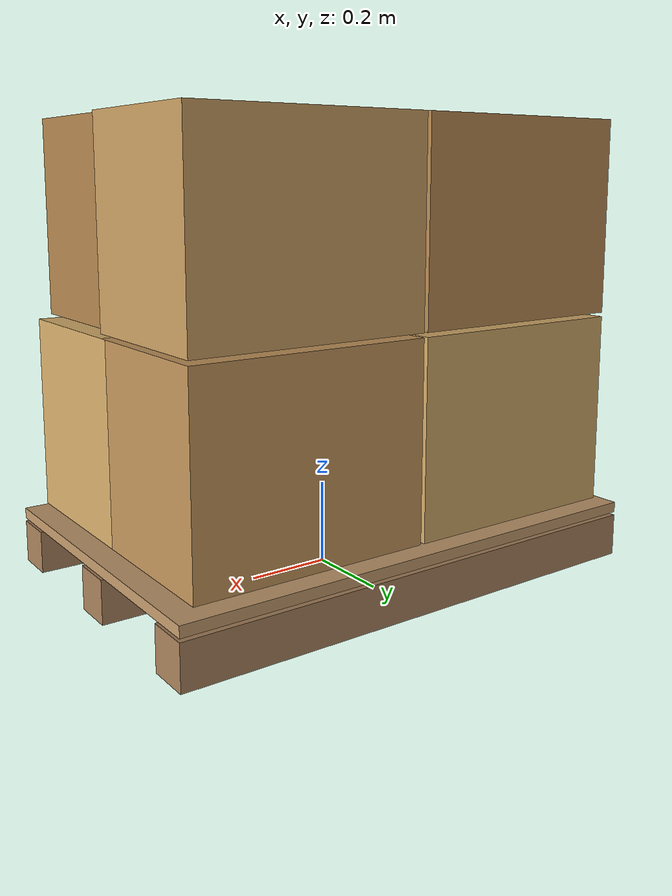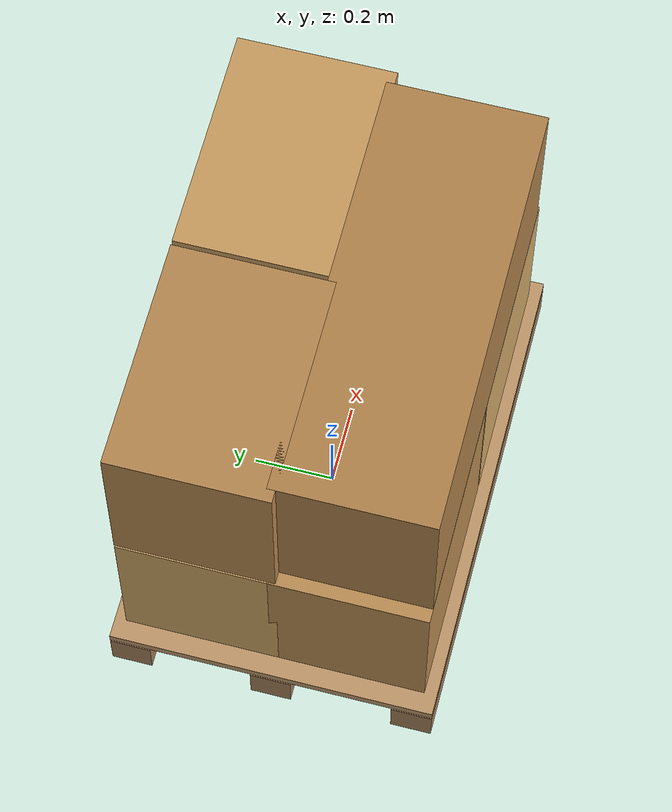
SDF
<?xml version="1.0" ?>
<sdf version="1.6">
  <model name="pallet_stack">
    <!-- Static scenery stock: looks real, cheap for physics -->
    <static>true</static>
    <link name="link">

      <!-- Euro pallet deck -->
      <visual name="deck_vis">
        <pose>0 0 0.13 0 0 0</pose>
        <geometry><box><size>1.20 0.80 0.025</size></box></geometry>
        <material><ambient>0.76 0.60 0.42 1</ambient><diffuse>0.76 0.60 0.42 1</diffuse></material>
      </visual>
      <collision name="deck_col">
        <pose>0 0 0.13 0 0 0</pose>
        <geometry><box><size>1.20 0.80 0.025</size></box></geometry>
      </collision>

      <visual name="runner_l_vis">
        <pose>0 0.35 0.06 0 0 0</pose>
        <geometry><box><size>1.20 0.10 0.10</size></box></geometry>
        <material><ambient>0.65 0.50 0.35 1</ambient><diffuse>0.65 0.50 0.35 1</diffuse></material>
      </visual>
      <collision name="runner_l_col">
        <pose>0 0.35 0.06 0 0 0</pose>
        <geometry><box><size>1.20 0.10 0.10</size></box></geometry>
      </collision>
      <visual name="runner_m_vis">
        <pose>0 0 0.06 0 0 0</pose>
        <geometry><box><size>1.20 0.10 0.10</size></box></geometry>
        <material><ambient>0.65 0.50 0.35 1</ambient><diffuse>0.65 0.50 0.35 1</diffuse></material>
      </visual>
      <collision name="runner_m_col">
        <pose>0 0 0.06 0 0 0</pose>
        <geometry><box><size>1.20 0.10 0.10</size></box></geometry>
      </collision>
      <visual name="runner_r_vis">
        <pose>0 -0.35 0.06 0 0 0</pose>
        <geometry><box><size>1.20 0.10 0.10</size></box></geometry>
        <material><ambient>0.65 0.50 0.35 1</ambient><diffuse>0.65 0.50 0.35 1</diffuse></material>
      </visual>
      <collision name="runner_r_col">
        <pose>0 -0.35 0.06 0 0 0</pose>
        <geometry><box><size>1.20 0.10 0.10</size></box></geometry>
      </collision>

      <!-- Layer 1 cartons -->
      <visual name="box_a_vis">
        <pose>-0.28 0.18 0.38 0 0 0</pose>
        <geometry><box><size>0.55 0.38 0.45</size></box></geometry>
        <material><ambient>0.78 0.62 0.38 1</ambient><diffuse>0.82 0.66 0.40 1</diffuse></material>
      </visual>
      <collision name="box_a_col">
        <pose>-0.28 0.18 0.38 0 0 0</pose>
        <geometry><box><size>0.55 0.38 0.45</size></box></geometry>
      </collision>
      <visual name="box_b_vis">
        <pose>0.28 0.18 0.38 0 0 0</pose>
        <geometry><box><size>0.55 0.38 0.45</size></box></geometry>
        <material><ambient>0.72 0.55 0.32 1</ambient><diffuse>0.76 0.58 0.35 1</diffuse></material>
      </visual>
      <collision name="box_b_col">
        <pose>0.28 0.18 0.38 0 0 0</pose>
        <geometry><box><size>0.55 0.38 0.45</size></box></geometry>
      </collision>
      <visual name="box_c_vis">
        <pose>-0.28 -0.18 0.38 0 0 0</pose>
        <geometry><box><size>0.55 0.38 0.45</size></box></geometry>
        <material><ambient>0.70 0.52 0.30 1</ambient><diffuse>0.74 0.56 0.33 1</diffuse></material>
      </visual>
      <collision name="box_c_col">
        <pose>-0.28 -0.18 0.38 0 0 0</pose>
        <geometry><box><size>0.55 0.38 0.45</size></box></geometry>
      </collision>
      <visual name="box_d_vis">
        <pose>0.28 -0.18 0.38 0 0 0</pose>
        <geometry><box><size>0.55 0.38 0.45</size></box></geometry>
        <material><ambient>0.80 0.64 0.40 1</ambient><diffuse>0.84 0.68 0.42 1</diffuse></material>
      </visual>
      <collision name="box_d_col">
        <pose>0.28 -0.18 0.38 0 0 0</pose>
        <geometry><box><size>0.55 0.38 0.45</size></box></geometry>
      </collision>

      <!-- Layer 2 cartons -->
      <visual name="box_e_vis">
        <pose>-0.28 0.18 0.84 0 0 0</pose>
        <geometry><box><size>0.55 0.38 0.45</size></box></geometry>
        <material><ambient>0.68 0.50 0.28 1</ambient><diffuse>0.72 0.54 0.32 1</diffuse></material>
      </visual>
      <collision name="box_e_col">
        <pose>-0.28 0.18 0.84 0 0 0</pose>
        <geometry><box><size>0.55 0.38 0.45</size></box></geometry>
      </collision>
      <visual name="box_f_vis">
        <pose>0.28 0.18 0.84 0 0 0</pose>
        <geometry><box><size>0.55 0.38 0.45</size></box></geometry>
        <material><ambient>0.75 0.58 0.35 1</ambient><diffuse>0.79 0.62 0.38 1</diffuse></material>
      </visual>
      <collision name="box_f_col">
        <pose>0.28 0.18 0.84 0 0 0</pose>
        <geometry><box><size>0.55 0.38 0.45</size></box></geometry>
      </collision>
      <visual name="box_g_vis">
        <pose>0.0 -0.18 0.84 0 0 0</pose>
        <geometry><box><size>1.05 0.38 0.45</size></box></geometry>
        <material><ambient>0.66 0.48 0.26 1</ambient><diffuse>0.70 0.52 0.30 1</diffuse></material>
      </visual>
      <collision name="box_g_col">
        <pose>0.0 -0.18 0.84 0 0 0</pose>
        <geometry><box><size>1.05 0.38 0.45</size></box></geometry>
      </collision>
    </link>
  </model>
</sdf>
